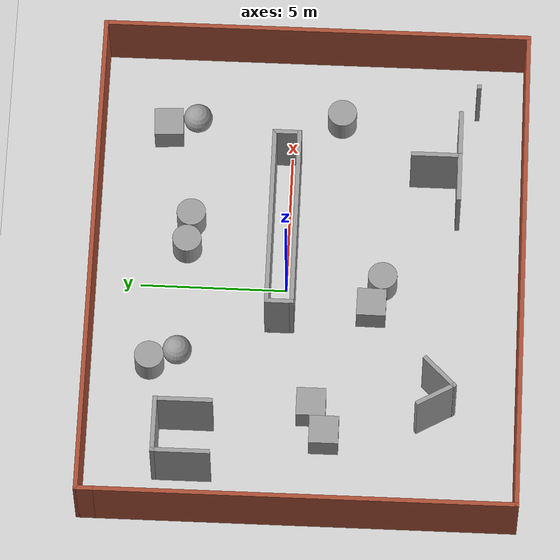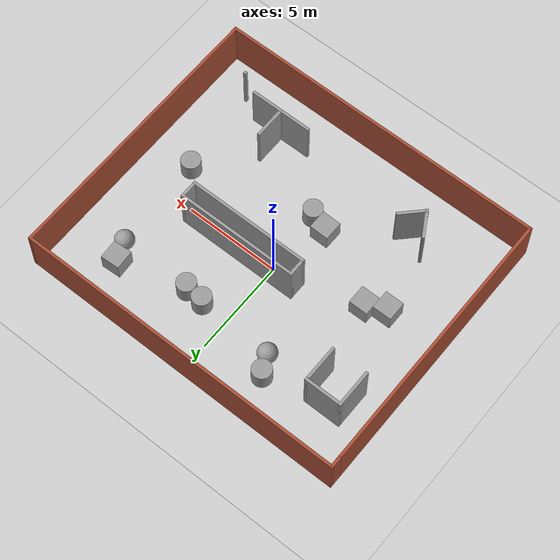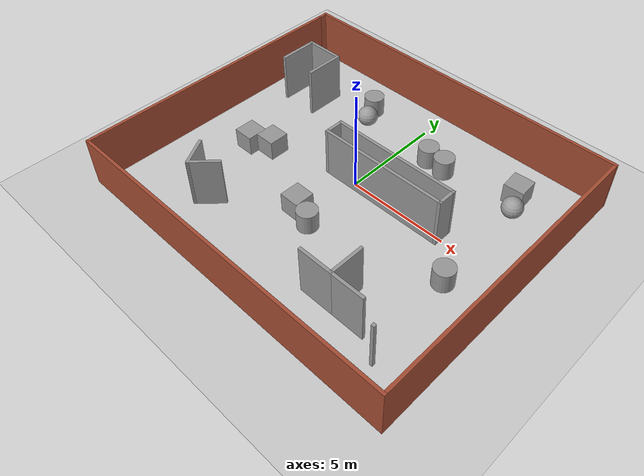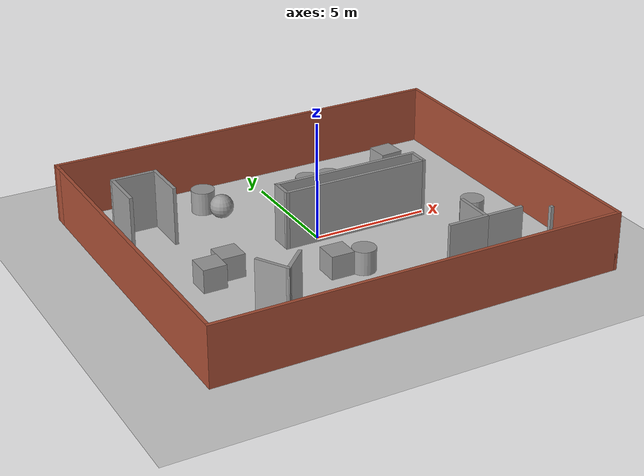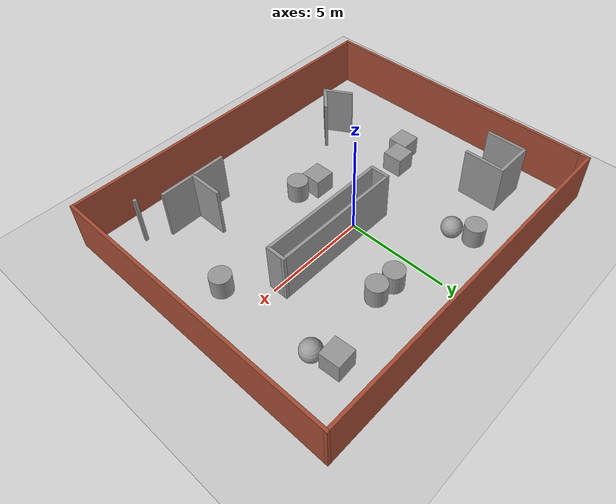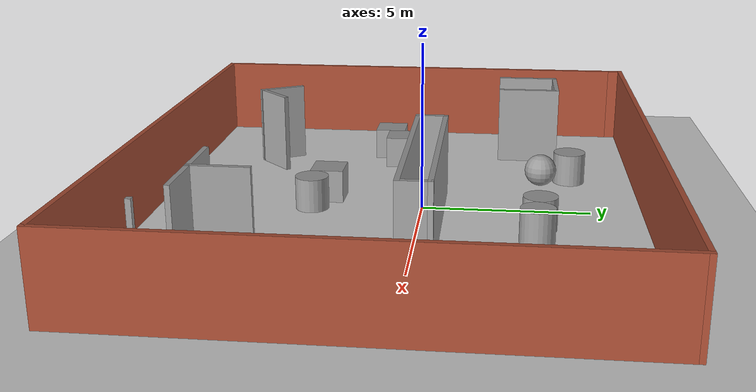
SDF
<sdf version="1.7">
 <world name="default">
  <light name="sun" type="directional">
   <pose>0 0 10 0 -0 0</pose>
   <diffuse>0.8 0.8 0.8 1</diffuse>
   <specular>0.2 0.2 0.2 1</specular>
   <attenuation>
    <range>1000</range>
    <constant>0.9</constant>
    <linear>0.01</linear>
    <quadratic>0.001</quadratic>
   </attenuation>
   <direction>-0.5 0.1 -0.9</direction>
   <spot><inner_angle>0</inner_angle><outer_angle>0</outer_angle><falloff>0</falloff></spot>
  </light>
  <model name="ground_plane">
   <static>1</static>
   <link name="link">
    <collision name="collision">
     <geometry><plane><normal>0 0 1</normal><size>100 100</size></plane></geometry>
     <surface>
      <contact><collide_bitmask>65535</collide_bitmask></contact>
      <friction><ode><mu>100</mu><mu2>50</mu2></ode></friction>
     </surface>
    </collision>
    <visual name="visual">
     <cast_shadows>0</cast_shadows>
     <geometry><plane><normal>0 0 1</normal><size>100 100</size></plane></geometry>
     <material>
      <script><uri>file://media/materials/scripts/gazebo.material</uri><name>Gazebo/Grey</name></script>
     </material>
    </visual>
   </link>
  </model>
  <gravity>0 0 -9.8</gravity>
  <magnetic_field>6e-06 2.3e-05 -4.2e-05</magnetic_field>
  <atmosphere type="adiabatic"/>
  <physics type="ode">
   <max_step_size>0.001</max_step_size>
   <real_time_factor>1</real_time_factor>
   <real_time_update_rate>1000</real_time_update_rate>
  </physics>
  <scene><ambient>0.4 0.4 0.4 1</ambient><background>0.7 0.7 0.7 1</background><shadows>1</shadows></scene>
  <spherical_coordinates>
   <surface_model>EARTH_WGS84</surface_model>
   <latitude_deg>0</latitude_deg>
   <longitude_deg>0</longitude_deg>
   <elevation>0</elevation>
   <heading_deg>0</heading_deg>
  </spherical_coordinates>
  <model name="Untitled">
   <pose>0.137599 -0.694275 0 0 -0 0</pose>
   <link name="Wall_2">
    <collision name="Wall_2_Collision">
     <geometry><box><size>14.25 0.15 2.5</size></box></geometry>
     <pose>0 0 1.25 0 -0 0</pose>
    </collision>
    <visual name="Wall_2_Visual">
     <pose>0 0 1.25 0 -0 0</pose>
     <geometry><box><size>14.25 0.15 2.5</size></box></geometry>
     <material>
      <script><uri>file://media/materials/scripts/gazebo.material</uri><name>Gazebo/Bricks</name></script>
      <ambient>1 1 1 1</ambient>
     </material>
     <meta><layer>0</layer></meta>
    </visual>
    <pose>-8.675 -0.25 0 0 -0 -1.5708</pose>
   </link>
   <link name="Wall_3">
    <collision name="Wall_3_Collision">
     <geometry><box><size>17.5 0.15 2.5</size></box></geometry>
     <pose>0 0 1.25 0 -0 0</pose>
    </collision>
    <visual name="Wall_3_Visual">
     <pose>0 0 1.25 0 -0 0</pose>
     <geometry><box><size>17.5 0.15 2.5</size></box></geometry>
     <material>
      <script><uri>file://media/materials/scripts/gazebo.material</uri><name>Gazebo/Bricks</name></script>
      <ambient>1 1 1 1</ambient>
     </material>
     <meta><layer>0</layer></meta>
    </visual>
    <pose>-0 -7.3 0 0 -0 0</pose>
   </link>
   <link name="Wall_4">
    <collision name="Wall_4_Collision">
     <geometry><box><size>14.75 0.15 2.5</size></box></geometry>
     <pose>0 0 1.25 0 -0 0</pose>
    </collision>
    <visual name="Wall_4_Visual">
     <pose>0 0 1.25 0 -0 0</pose>
     <geometry><box><size>14.75 0.15 2.5</size></box></geometry>
     <material>
      <script><uri>file://media/materials/scripts/gazebo.material</uri><name>Gazebo/Bricks</name></script>
      <ambient>1 1 1 1</ambient>
     </material>
     <meta><layer>0</layer></meta>
    </visual>
    <pose>8.675 0 0 0 -0 1.5708</pose>
   </link>
   <link name="Wall_5">
    <collision name="Wall_5_Collision">
     <geometry><box><size>17.5 0.15 2.5</size></box></geometry>
     <pose>0 0 1.25 0 -0 0</pose>
    </collision>
    <visual name="Wall_5_Visual">
     <pose>0 0 1.25 0 -0 0</pose>
     <geometry><box><size>17.5 0.15 2.5</size></box></geometry>
     <material>
      <script><uri>file://media/materials/scripts/gazebo.material</uri><name>Gazebo/Bricks</name></script>
      <ambient>1 1 1 1</ambient>
     </material>
     <meta><layer>0</layer></meta>
    </visual>
    <pose>-0 7.3 0 0 -0 3.14159</pose>
   </link>
   <link name="Wall_6">
    <collision name="Wall_6_Collision">
     <geometry><box><size>0.65 0.15 2.5</size></box></geometry>
     <pose>0 0 1.25 0 -0 0</pose>
    </collision>
    <visual name="Wall_6_Visual">
     <pose>0 0 1.25 0 -0 0</pose>
     <geometry><box><size>0.65 0.15 2.5</size></box></geometry>
     <material>
      <script><uri>file://media/materials/scripts/gazebo.material</uri><name>Gazebo/Bricks</name></script>
      <ambient>1 1 1 1</ambient>
     </material>
     <meta><layer>0</layer></meta>
    </visual>
    <pose>-8.675 7.05 0 0 -0 -1.5708</pose>
   </link>
   <static>1</static>
  </model>
  <model name="Untitled_0">
   <pose>-0.109454 -1.09324 0 0 -0 0</pose>
   <link name="Wall_23">
    <collision name="Wall_23_Collision">
     <geometry><box><size>2 0.15 2.5</size></box></geometry>
     <pose>0 0 1.25 0 -0 0</pose>
    </collision>
    <visual name="Wall_23_Visual">
     <pose>0 0 1.25 0 -0 0</pose>
     <geometry><box><size>2 0.15 2.5</size></box></geometry>
     <material>
      <script><uri>file://media/materials/scripts/gazebo.material</uri><name>Gazebo/Grey</name></script>
      <ambient>1 1 1 1</ambient>
     </material>
     <meta><layer>0</layer></meta>
    </visual>
    <pose>-6.96081 4.32142 0 0 -0 -1.5708</pose>
   </link>
   <link name="Wall_25">
    <collision name="Wall_25_Collision">
     <geometry><box><size>2 0.15 2.5</size></box></geometry>
     <pose>0 0 1.25 0 -0 0</pose>
    </collision>
    <visual name="Wall_25_Visual">
     <pose>0 0 1.25 0 -0 0</pose>
     <geometry><box><size>2 0.15 2.5</size></box></geometry>
     <material>
      <script><uri>file://media/materials/scripts/gazebo.material</uri><name>Gazebo/Grey</name></script>
      <ambient>1 1 1 1</ambient>
     </material>
     <meta><layer>0</layer></meta>
    </visual>
    <pose>-6.03581 5.24642 0 0 -0 0</pose>
   </link>
   <link name="Wall_26">
    <collision name="Wall_26_Collision">
     <geometry><box><size>2 0.15 2.5</size></box></geometry>
     <pose>0 0 1.25 0 -0 0</pose>
    </collision>
    <visual name="Wall_26_Visual">
     <pose>0 0 1.25 0 -0 0</pose>
     <geometry><box><size>2 0.15 2.5</size></box></geometry>
     <material>
      <script><uri>file://media/materials/scripts/gazebo.material</uri><name>Gazebo/Grey</name></script>
      <ambient>1 1 1 1</ambient>
     </material>
     <meta><layer>0</layer></meta>
    </visual>
    <pose>-5.11081 4.32142 0 0 -0 -1.5708</pose>
   </link>
   <link name="Wall_31">
    <collision name="Wall_31_Collision">
     <geometry><box><size>6.5 0.15 2.5</size></box></geometry>
     <pose>0 0 1.25 0 -0 0</pose>
    </collision>
    <visual name="Wall_31_Visual">
     <pose>0 0 1.25 0 -0 0</pose>
     <geometry><box><size>6.5 0.15 2.5</size></box></geometry>
     <material>
      <script><uri>file://media/materials/scripts/gazebo.material</uri><name>Gazebo/Grey</name></script>
      <ambient>1 1 1 1</ambient>
     </material>
     <meta><layer>0</layer></meta>
    </visual>
    <pose>1.78982 0.847164 0 0 -0 0</pose>
   </link>
   <link name="Wall_32">
    <collision name="Wall_32_Collision">
     <geometry><box><size>1 0.15 2.5</size></box></geometry>
     <pose>0 0 1.25 0 -0 0</pose>
    </collision>
    <visual name="Wall_32_Visual">
     <pose>0 0 1.25 0 -0 0</pose>
     <geometry><box><size>1 0.15 2.5</size></box></geometry>
     <material>
      <script><uri>file://media/materials/scripts/gazebo.material</uri><name>Gazebo/Grey</name></script>
      <ambient>1 1 1 1</ambient>
     </material>
     <meta><layer>0</layer></meta>
    </visual>
    <pose>4.96482 1.27216 0 0 -0 1.5708</pose>
   </link>
   <link name="Wall_33">
    <collision name="Wall_33_Collision">
     <geometry><box><size>6.5 0.15 2.5</size></box></geometry>
     <pose>0 0 1.25 0 -0 0</pose>
    </collision>
    <visual name="Wall_33_Visual">
     <pose>0 0 1.25 0 -0 0</pose>
     <geometry><box><size>6.5 0.15 2.5</size></box></geometry>
     <material>
      <script><uri>file://media/materials/scripts/gazebo.material</uri><name>Gazebo/Grey</name></script>
      <ambient>1 1 1 1</ambient>
     </material>
     <meta><layer>0</layer></meta>
    </visual>
    <pose>1.78982 1.69716 0 0 -0 3.14159</pose>
   </link>
   <link name="Wall_35">
    <collision name="Wall_35_Collision">
     <geometry><box><size>1 0.15 2.5</size></box></geometry>
     <pose>0 0 1.25 0 -0 0</pose>
    </collision>
    <visual name="Wall_35_Visual">
     <pose>0 0 1.25 0 -0 0</pose>
     <geometry><box><size>1 0.15 2.5</size></box></geometry>
     <material>
      <script><uri>file://media/materials/scripts/gazebo.material</uri><name>Gazebo/Grey</name></script>
      <ambient>1 1 1 1</ambient>
     </material>
     <meta><layer>0</layer></meta>
    </visual>
    <pose>-1.38518 1.27216 0 0 -0 1.5708</pose>
   </link>
   <link name="Wall_44">
    <collision name="Wall_44_Collision">
     <geometry><box><size>1.5 0.15 2.5</size></box></geometry>
     <pose>0 0 1.25 0 -0 0</pose>
    </collision>
    <visual name="Wall_44_Visual">
     <pose>0 0 1.25 0 -0 0</pose>
     <geometry><box><size>1.5 0.15 2.5</size></box></geometry>
     <material>
      <script><uri>file://media/materials/scripts/gazebo.material</uri><name>Gazebo/Grey</name></script>
      <ambient>1 1 1 1</ambient>
     </material>
     <meta><layer>0</layer></meta>
    </visual>
    <pose>-4.56065 -4.11027 0 0 -0 -1.0472</pose>
   </link>
   <link name="Wall_45">
    <collision name="Wall_45_Collision">
     <geometry><box><size>1.5 0.15 2.5</size></box></geometry>
     <pose>0 0 1.25 0 -0 0</pose>
    </collision>
    <visual name="Wall_45_Visual">
     <pose>0 0 1.25 0 -0 0</pose>
     <geometry><box><size>1.5 0.15 2.5</size></box></geometry>
     <material>
      <script><uri>file://media/materials/scripts/gazebo.material</uri><name>Gazebo/Grey</name></script>
      <ambient>1 1 1 1</ambient>
     </material>
     <meta><layer>0</layer></meta>
    </visual>
    <pose>-3.74585 -4.21754 0 0 -0 0.785398</pose>
   </link>
   <link name="Wall_47">
    <collision name="Wall_47_Collision">
     <geometry><box><size>1.75 0.15 2.5</size></box></geometry>
     <pose>0 0 1.25 0 -0 0</pose>
    </collision>
    <visual name="Wall_47_Visual">
     <pose>0 0 1.25 0 -0 0</pose>
     <geometry><box><size>1.75 0.15 2.5</size></box></geometry>
     <material>
      <script><uri>file://media/materials/scripts/gazebo.material</uri><name>Gazebo/Grey</name></script>
      <ambient>1 1 1 1</ambient>
     </material>
     <meta><layer>0</layer></meta>
    </visual>
    <pose>4.31491 -3.86313 0 0 -0 -1.5708</pose>
   </link>
   <link name="Wall_48">
    <collision name="Wall_48_Collision">
     <geometry><box><size>1.75 0.15 2.5</size></box></geometry>
     <pose>0 0 1.25 0 -0 0</pose>
    </collision>
    <visual name="Wall_48_Visual">
     <pose>0 0 1.25 0 -0 0</pose>
     <geometry><box><size>1.75 0.15 2.5</size></box></geometry>
     <material>
      <script><uri>file://media/materials/scripts/gazebo.material</uri><name>Gazebo/Grey</name></script>
      <ambient>1 1 1 1</ambient>
     </material>
     <meta><layer>0</layer></meta>
    </visual>
    <pose>3.51491 -4.66313 0 0 -0 3.14159</pose>
   </link>
   <link name="Wall_52">
    <collision name="Wall_52_Collision">
     <geometry><box><size>0.15 0.15 2.5</size></box></geometry>
     <pose>0 0 1.25 0 -0 0</pose>
    </collision>
    <visual name="Wall_52_Visual">
     <pose>0 0 1.25 0 -0 0</pose>
     <geometry><box><size>0.15 0.15 2.5</size></box></geometry>
     <material>
      <script><uri>file://media/materials/scripts/gazebo.material</uri><name>Gazebo/Grey</name></script>
      <ambient>0 0 0 1</ambient>
     </material>
     <meta><layer>0</layer></meta>
    </visual>
    <pose>6.96081 -5.24642 0 0 -0 0</pose>
   </link>
   <link name="Wall_53">
    <collision name="Wall_53_Collision">
     <geometry><box><size>1.75 0.15 2.5</size></box></geometry>
     <pose>0 0 1.25 0 -0 0</pose>
    </collision>
    <visual name="Wall_53_Visual">
     <pose>0 0 1.25 0 -0 0</pose>
     <geometry><box><size>1.75 0.15 2.5</size></box></geometry>
     <material>
      <script><uri>file://media/materials/scripts/gazebo.material</uri><name>Gazebo/Grey</name></script>
      <ambient>1 1 1 1</ambient>
     </material>
     <meta><layer>0</layer></meta>
    </visual>
    <pose>5.11491 -4.66313 0 0 -0 0</pose>
   </link>
   <static>1</static>
  </model>
  <model name="unit_cylinder">
   <pose>1.40631 3.46574 0.499992 -3e-06 2e-06 -0.001326</pose>
   <link name="link">
    <inertial>
     <mass>1</mass>
     <inertia><ixx>0.145833</ixx><ixy>0</ixy><ixz>0</ixz><iyy>0.145833</iyy><iyz>0</iyz><izz>0.125</izz></inertia>
    </inertial>
    <collision name="collision">
     <geometry><cylinder><radius>0.5</radius><length>1</length></cylinder></geometry>
    </collision>
    <visual name="visual">
     <geometry><cylinder><radius>0.5</radius><length>1</length></cylinder></geometry>
     <material>
      <script><name>Gazebo/Grey</name><uri>file://media/materials/scripts/gazebo.material</uri></script>
     </material>
    </visual>
   </link>
  </model>
  <model name="unit_cylinder_0">
   <pose>2.4016 3.36864 0.499991 -0 -0 -0.000526</pose>
   <link name="link">
    <inertial>
     <mass>1</mass>
     <inertia><ixx>0.145833</ixx><ixy>0</ixy><ixz>0</ixz><iyy>0.145833</iyy><iyz>0</iyz><izz>0.125</izz></inertia>
    </inertial>
    <collision name="collision">
     <geometry><cylinder><radius>0.5</radius><length>1</length></cylinder></geometry>
    </collision>
    <visual name="visual">
     <geometry><cylinder><radius>0.5</radius><length>1</length></cylinder></geometry>
     <material>
      <script><name>Gazebo/Grey</name><uri>file://media/materials/scripts/gazebo.material</uri></script>
     </material>
    </visual>
   </link>
  </model>
  <model name="unit_box">
   <pose>-0.725677 -2.92661 0.499995 1e-05 -0 -0.010772</pose>
   <link name="link">
    <inertial>
     <mass>1</mass>
     <inertia>
      <ixx>0.166667</ixx>
      <ixy>0</ixy>
      <ixz>0</ixz>
      <iyy>0.166667</iyy>
      <iyz>0</iyz>
      <izz>0.166667</izz>
     </inertia>
    </inertial>
    <collision name="collision"><geometry><box><size>1 1 1</size></box></geometry></collision>
    <visual name="visual">
     <geometry><box><size>1 1 1</size></box></geometry>
     <material>
      <script><name>Gazebo/Grey</name><uri>file://media/materials/scripts/gazebo.material</uri></script>
     </material>
    </visual>
   </link>
  </model>
  <model name="unit_cylinder_1">
   <pose>0.270639 -3.27629 0.499998 3e-06 -3e-06 0.005209</pose>
   <link name="link">
    <inertial>
     <mass>1</mass>
     <inertia><ixx>0.145833</ixx><ixy>0</ixy><ixz>0</ixz><iyy>0.145833</iyy><iyz>0</iyz><izz>0.125</izz></inertia>
    </inertial>
    <collision name="collision">
     <geometry><cylinder><radius>0.5</radius><length>1</length></cylinder></geometry>
    </collision>
    <visual name="visual">
     <geometry><cylinder><radius>0.5</radius><length>1</length></cylinder></geometry>
     <material>
      <script><name>Gazebo/Grey</name><uri>file://media/materials/scripts/gazebo.material</uri></script>
     </material>
    </visual>
   </link>
  </model>
  <model name="unit_cylinder_2">
   <pose>6.39518 -1.66426 0.499992 -3e-06 3e-06 0</pose>
   <link name="link">
    <inertial>
     <mass>1</mass>
     <inertia><ixx>0.145833</ixx><ixy>0</ixy><ixz>0</ixz><iyy>0.145833</iyy><iyz>0</iyz><izz>0.125</izz></inertia>
    </inertial>
    <collision name="collision">
     <geometry><cylinder><radius>0.5</radius><length>1</length></cylinder></geometry>
    </collision>
    <visual name="visual">
     <geometry><cylinder><radius>0.5</radius><length>1</length></cylinder></geometry>
     <material>
      <script><name>Gazebo/Grey</name><uri>file://media/materials/scripts/gazebo.material</uri></script>
     </material>
    </visual>
   </link>
  </model>
  <model name="unit_box_0">
   <pose>5.82569 4.31463 0.499995 0 -1e-05 0.059585</pose>
   <link name="link">
    <inertial>
     <mass>1</mass>
     <inertia>
      <ixx>0.166667</ixx>
      <ixy>0</ixy>
      <ixz>0</ixz>
      <iyy>0.166667</iyy>
      <iyz>0</iyz>
      <izz>0.166667</izz>
     </inertia>
    </inertial>
    <collision name="collision"><geometry><box><size>1 1 1</size></box></geometry></collision>
    <visual name="visual">
     <geometry><box><size>1 1 1</size></box></geometry>
     <material>
      <script><name>Gazebo/Grey</name><uri>file://media/materials/scripts/gazebo.material</uri></script>
     </material>
    </visual>
   </link>
  </model>
  <model name="unit_sphere">
   <pose>6.22374 3.33322 0.5 0.006529 0.003893 -0.042944</pose>
   <link name="link">
    <inertial>
     <mass>1</mass>
     <inertia><ixx>0.1</ixx><ixy>0</ixy><ixz>0</ixz><iyy>0.1</iyy><iyz>0</iyz><izz>0.1</izz></inertia>
    </inertial>
    <collision name="collision"><geometry><sphere><radius>0.5</radius></sphere></geometry></collision>
    <visual name="visual">
     <geometry><sphere><radius>0.5</radius></sphere></geometry>
     <material>
      <script><name>Gazebo/Grey</name><uri>file://media/materials/scripts/gazebo.material</uri></script>
     </material>
    </visual>
   </link>
  </model>
  <model name="unit_box_1">
   <pose>-5.48456 -1.49414 0.5 0 -0 0.001345</pose>
   <link name="link">
    <inertial>
     <mass>1</mass>
     <inertia>
      <ixx>0.166667</ixx>
      <ixy>0</ixy>
      <ixz>0</ixz>
      <iyy>0.166667</iyy>
      <iyz>0</iyz>
      <izz>0.166667</izz>
     </inertia>
    </inertial>
    <collision name="collision"><geometry><box><size>1 1 1</size></box></geometry></collision>
    <visual name="visual">
     <geometry><box><size>1 1 1</size></box></geometry>
     <material>
      <script><name>Gazebo/Grey</name><uri>file://media/materials/scripts/gazebo.material</uri></script>
     </material>
    </visual>
   </link>
  </model>
  <model name="unit_box_2">
   <pose>-4.48519 -1.02723 0.499995 1e-05 -0 0.001343</pose>
   <link name="link">
    <inertial>
     <mass>1</mass>
     <inertia>
      <ixx>0.166667</ixx>
      <ixy>0</ixy>
      <ixz>0</ixz>
      <iyy>0.166667</iyy>
      <iyz>0</iyz>
      <izz>0.166667</izz>
     </inertia>
    </inertial>
    <collision name="collision"><geometry><box><size>1 1 1</size></box></geometry></collision>
    <visual name="visual">
     <geometry><box><size>1 1 1</size></box></geometry>
     <material>
      <script><name>Gazebo/Grey</name><uri>file://media/materials/scripts/gazebo.material</uri></script>
     </material>
    </visual>
   </link>
  </model>
  <model name="unit_cylinder_3">
   <pose>-2.99081 4.52346 0.499993 -3e-06 -4e-06 -0</pose>
   <link name="link">
    <inertial>
     <mass>1</mass>
     <inertia><ixx>0.145833</ixx><ixy>0</ixy><ixz>0</ixz><iyy>0.145833</iyy><iyz>0</iyz><izz>0.125</izz></inertia>
    </inertial>
    <collision name="collision">
     <geometry><cylinder><radius>0.5</radius><length>1</length></cylinder></geometry>
    </collision>
    <visual name="visual">
     <geometry><cylinder><radius>0.5</radius><length>1</length></cylinder></geometry>
     <material>
      <script><name>Gazebo/Grey</name><uri>file://media/materials/scripts/gazebo.material</uri></script>
     </material>
    </visual>
   </link>
  </model>
  <model name="unit_sphere_0">
   <pose>-2.56361 3.60116 0.5 0 -0 0</pose>
   <link name="link">
    <inertial>
     <mass>1</mass>
     <inertia><ixx>0.1</ixx><ixy>0</ixy><ixz>0</ixz><iyy>0.1</iyy><iyz>0</iyz><izz>0.1</izz></inertia>
    </inertial>
    <collision name="collision"><geometry><sphere><radius>0.5</radius></sphere></geometry></collision>
    <visual name="visual">
     <geometry><sphere><radius>0.5</radius></sphere></geometry>
     <material>
      <script><name>Gazebo/Grey</name><uri>file://media/materials/scripts/gazebo.material</uri></script>
     </material>
    </visual>
   </link>
  </model>
 </world>
</sdf>
